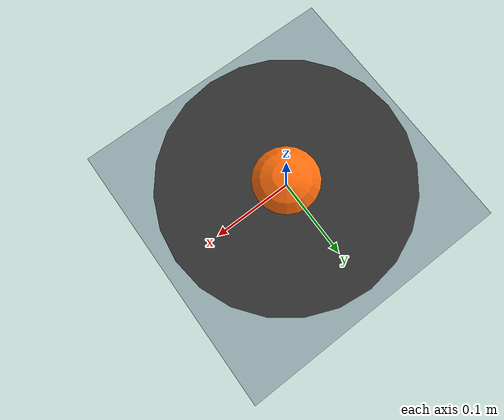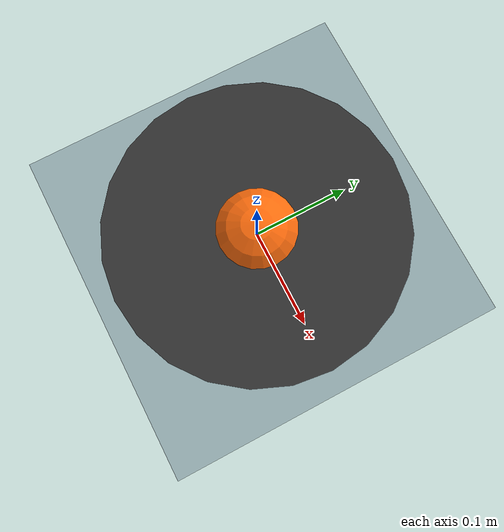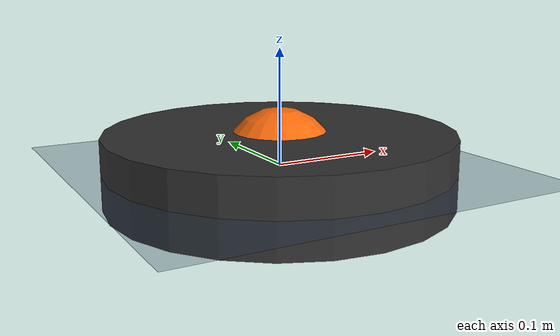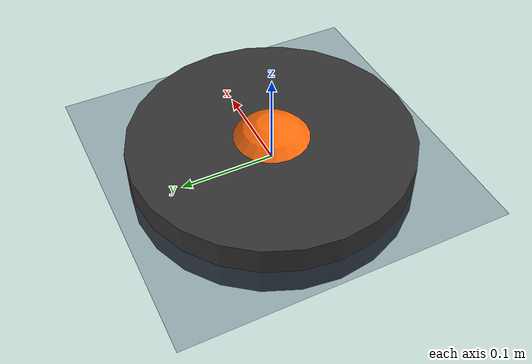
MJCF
<mujoco model="paddle_ball">

    <!-- Simulation settings, NOTE: the timestep seemed to make a huge difference -->
    <option solver="Newton" integrator="RK4" timestep="0.005" iterations="20" ls_iterations="20" cone="elliptic"/>

    <!-- Inertia is computed from geometry -->
    <compiler inertiafromgeom="true" />

    <!-- Default properties -->
    <default>
        <!--
        solref controls how bouncy the collision is in the normal direction.
        solreffriction controls how much energy is dissipated tangentially. -->
        <pair solref="-10000 -25" solreffriction="0 -1000"/>
    </default>

    <asset>
        <texture type="skybox" builtin="flat" rgb1="0 0 0" rgb2="0 0 0" width="512" height="512"/>
        <texture type="2d" name="groundplane" builtin="checker" mark="edge" rgb1="0.2 0.3 0.4" rgb2="0.1 0.2 0.3" markrgb="0.9 0.9 0.9" width="300" height="300"/>
        <material name="groundplane" texture="groundplane" texuniform="true" texrepeat="5 5" reflectance="0.2"/>
    </asset>

    <!-- Memory settings (default is 1000) -->
    <size nstack="3000" />

    <worldbody>

        <!-- Add light -->
        <light pos="-0.5 0.0 2.0" dir="0 0 -1" directional="true"/>

        <!-- Ground -->
        <geom name="ground" type="plane" size="0 0 0.01" material="groundplane" contype="1" conaffinity="6"/>

        <!-- Ball -->
        <body name="ball" pos="0 0 0">
            <joint name="ball_slide" type="slide" axis="0 0 1" damping="0.05"/>
            <geom name="ball" type="sphere" size="0.05" rgba="1.0 0.424 0.047 1" contype="2" conaffinity="5"/>
            <site name="ball_site" size="0.051" type="sphere" rgba="0 0 0 0"/>
        </body>

        <!-- Paddle -->
        <body name="paddle" pos="0 0 0">
            <joint name="paddle_slide" type="slide" axis="0 0 1" damping="0.05"/>
            <geom name="paddle" type="cylinder" size="0.15 0.030" rgba="0.2 0.2 0.2 1" contype="4" conaffinity="3"/>
            <site name="paddle_site" type="sphere" size="0.031" rgba="0 0 0 0"/>
        </body>

    </worldbody>

    <!-- Sensors -->
    <sensor>
        <!-- Ball vs Paddle -->
        <touch name="ball_paddle_touch" site="ball_site"/>

        <!-- Ball vs Ground -->

        <!-- Paddle vs Ground -->
    </sensor>

    <!-- Actuators -->
    <actuator>
        <motor name="paddle_motor" joint="paddle_slide" ctrllimited="true" ctrlrange="-1 1" gear="250"/>
    </actuator>

    <!-- contacts -->
    <contact>
        <pair geom1="paddle" geom2="ball"/>
    </contact>

    <!-- default configuration (when you press "Load key" button) -->
    <keyframe>
        <key name="default" qpos="1.0 0.5" qvel="0 0" />
    </keyframe>

</mujoco>
